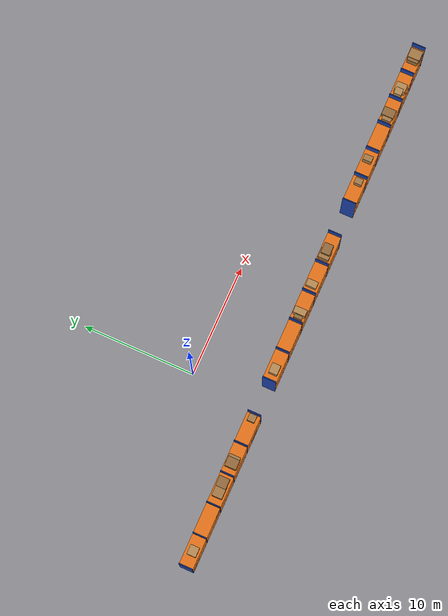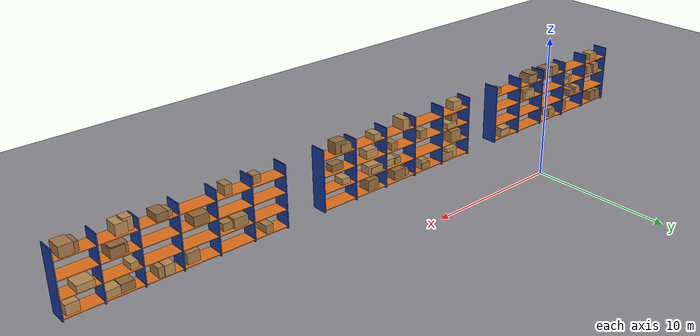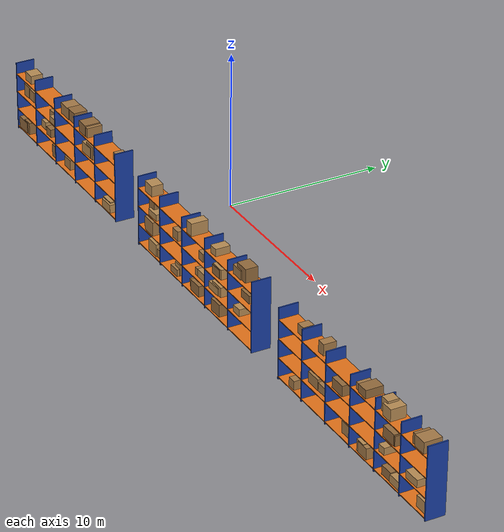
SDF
<sdf version="1.9">
 <world name="warehouse">
  <model name="ground_plane">
   <static>true</static>
   <link name="link">
    <collision name="collision">
     <geometry><plane><normal>0 0 1</normal><size>1 1</size></plane></geometry>
    </collision>
    <visual name="visual">
     <geometry><plane><normal>0 0 1</normal><size>200 100</size></plane></geometry>
     <material>
      <ambient>0.55 0.55 0.57 1</ambient>
      <diffuse>0.55 0.55 0.57 1</diffuse>
      <specular>0.1 0.1 0.1 1</specular>
     </material>
    </visual>
   </link>
  </model>
  <model name="rack9">
   <static>true</static>
   <link name="link">
    <collision name="up0_c">
     <pose>-15.000 -6.300 2.250 0 0 0</pose>
     <geometry><box><size>0.080 1.200 4.500</size></box></geometry>
    </collision>
    <visual name="up0_v">
     <pose>-15.000 -6.300 2.250 0 0 0</pose>
     <geometry><box><size>0.080 1.200 4.500</size></box></geometry>
     <material>
      <ambient>0.1 0.25 0.65 1</ambient>
      <diffuse>0.1 0.25 0.65 1</diffuse>
      <specular>0.1 0.1 0.1 1</specular>
     </material>
    </visual>
    <collision name="up1_c">
     <pose>-12.300 -6.300 2.250 0 0 0</pose>
     <geometry><box><size>0.080 1.200 4.500</size></box></geometry>
    </collision>
    <visual name="up1_v">
     <pose>-12.300 -6.300 2.250 0 0 0</pose>
     <geometry><box><size>0.080 1.200 4.500</size></box></geometry>
     <material>
      <ambient>0.1 0.25 0.65 1</ambient>
      <diffuse>0.1 0.25 0.65 1</diffuse>
      <specular>0.1 0.1 0.1 1</specular>
     </material>
    </visual>
    <collision name="up2_c">
     <pose>-9.600 -6.300 2.250 0 0 0</pose>
     <geometry><box><size>0.080 1.200 4.500</size></box></geometry>
    </collision>
    <visual name="up2_v">
     <pose>-9.600 -6.300 2.250 0 0 0</pose>
     <geometry><box><size>0.080 1.200 4.500</size></box></geometry>
     <material>
      <ambient>0.1 0.25 0.65 1</ambient>
      <diffuse>0.1 0.25 0.65 1</diffuse>
      <specular>0.1 0.1 0.1 1</specular>
     </material>
    </visual>
    <collision name="up3_c">
     <pose>-6.900 -6.300 2.250 0 0 0</pose>
     <geometry><box><size>0.080 1.200 4.500</size></box></geometry>
    </collision>
    <visual name="up3_v">
     <pose>-6.900 -6.300 2.250 0 0 0</pose>
     <geometry><box><size>0.080 1.200 4.500</size></box></geometry>
     <material>
      <ambient>0.1 0.25 0.65 1</ambient>
      <diffuse>0.1 0.25 0.65 1</diffuse>
      <specular>0.1 0.1 0.1 1</specular>
     </material>
    </visual>
    <collision name="up4_c">
     <pose>-4.200 -6.300 2.250 0 0 0</pose>
     <geometry><box><size>0.080 1.200 4.500</size></box></geometry>
    </collision>
    <visual name="up4_v">
     <pose>-4.200 -6.300 2.250 0 0 0</pose>
     <geometry><box><size>0.080 1.200 4.500</size></box></geometry>
     <material>
      <ambient>0.1 0.25 0.65 1</ambient>
      <diffuse>0.1 0.25 0.65 1</diffuse>
      <specular>0.1 0.1 0.1 1</specular>
     </material>
    </visual>
    <collision name="up5_c">
     <pose>-1.500 -6.300 2.250 0 0 0</pose>
     <geometry><box><size>0.080 1.200 4.500</size></box></geometry>
    </collision>
    <visual name="up5_v">
     <pose>-1.500 -6.300 2.250 0 0 0</pose>
     <geometry><box><size>0.080 1.200 4.500</size></box></geometry>
     <material>
      <ambient>0.1 0.25 0.65 1</ambient>
      <diffuse>0.1 0.25 0.65 1</diffuse>
      <specular>0.1 0.1 0.1 1</specular>
     </material>
    </visual>
    <collision name="sh0_c">
     <pose>-8.250 -6.300 0.150 0 0 0</pose>
     <geometry><box><size>13.500 1.200 0.050</size></box></geometry>
    </collision>
    <visual name="sh0_v">
     <pose>-8.250 -6.300 0.150 0 0 0</pose>
     <geometry><box><size>13.500 1.200 0.050</size></box></geometry>
     <material>
      <ambient>0.9 0.45 0.1 1</ambient>
      <diffuse>0.9 0.45 0.1 1</diffuse>
      <specular>0.1 0.1 0.1 1</specular>
     </material>
    </visual>
    <collision name="sh1_c">
     <pose>-8.250 -6.300 1.350 0 0 0</pose>
     <geometry><box><size>13.500 1.200 0.050</size></box></geometry>
    </collision>
    <visual name="sh1_v">
     <pose>-8.250 -6.300 1.350 0 0 0</pose>
     <geometry><box><size>13.500 1.200 0.050</size></box></geometry>
     <material>
      <ambient>0.9 0.45 0.1 1</ambient>
      <diffuse>0.9 0.45 0.1 1</diffuse>
      <specular>0.1 0.1 0.1 1</specular>
     </material>
    </visual>
    <collision name="sh2_c">
     <pose>-8.250 -6.300 2.550 0 0 0</pose>
     <geometry><box><size>13.500 1.200 0.050</size></box></geometry>
    </collision>
    <visual name="sh2_v">
     <pose>-8.250 -6.300 2.550 0 0 0</pose>
     <geometry><box><size>13.500 1.200 0.050</size></box></geometry>
     <material>
      <ambient>0.9 0.45 0.1 1</ambient>
      <diffuse>0.9 0.45 0.1 1</diffuse>
      <specular>0.1 0.1 0.1 1</specular>
     </material>
    </visual>
    <collision name="sh3_c">
     <pose>-8.250 -6.300 3.750 0 0 0</pose>
     <geometry><box><size>13.500 1.200 0.050</size></box></geometry>
    </collision>
    <visual name="sh3_v">
     <pose>-8.250 -6.300 3.750 0 0 0</pose>
     <geometry><box><size>13.500 1.200 0.050</size></box></geometry>
     <material>
      <ambient>0.9 0.45 0.1 1</ambient>
      <diffuse>0.9 0.45 0.1 1</diffuse>
      <specular>0.1 0.1 0.1 1</specular>
     </material>
    </visual>
    <collision name="c0_c">
     <pose>-14.299 -6.344 0.527 0 0 0</pose>
     <geometry><box><size>1.097 1.026 0.704</size></box></geometry>
    </collision>
    <visual name="c0_v">
     <pose>-14.299 -6.344 0.527 0 0 0</pose>
     <geometry><box><size>1.097 1.026 0.704</size></box></geometry>
     <material>
      <ambient>0.58 0.42 0.24 1</ambient>
      <diffuse>0.58 0.42 0.24 1</diffuse>
      <specular>0.1 0.1 0.1 1</specular>
     </material>
    </visual>
    <collision name="c1_c">
     <pose>-13.841 -6.322 0.564 0 0 0</pose>
     <geometry><box><size>0.648 0.995 0.777</size></box></geometry>
    </collision>
    <visual name="c1_v">
     <pose>-13.841 -6.322 0.564 0 0 0</pose>
     <geometry><box><size>0.648 0.995 0.777</size></box></geometry>
     <material>
      <ambient>0.58 0.42 0.24 1</ambient>
      <diffuse>0.58 0.42 0.24 1</diffuse>
      <specular>0.1 0.1 0.1 1</specular>
     </material>
    </visual>
    <collision name="c2_c">
     <pose>-13.403 -6.327 2.913 0 0 0</pose>
     <geometry><box><size>0.748 0.663 0.675</size></box></geometry>
    </collision>
    <visual name="c2_v">
     <pose>-13.403 -6.327 2.913 0 0 0</pose>
     <geometry><box><size>0.748 0.663 0.675</size></box></geometry>
     <material>
      <ambient>0.65 0.48 0.28 1</ambient>
      <diffuse>0.65 0.48 0.28 1</diffuse>
      <specular>0.1 0.1 0.1 1</specular>
     </material>
    </visual>
    <collision name="c3_c">
     <pose>-14.014 -6.263 2.959 0 0 0</pose>
     <geometry><box><size>0.666 0.840 0.769</size></box></geometry>
    </collision>
    <visual name="c3_v">
     <pose>-14.014 -6.263 2.959 0 0 0</pose>
     <geometry><box><size>0.666 0.840 0.769</size></box></geometry>
     <material>
      <ambient>0.65 0.48 0.28 1</ambient>
      <diffuse>0.65 0.48 0.28 1</diffuse>
      <specular>0.1 0.1 0.1 1</specular>
     </material>
    </visual>
    <collision name="c4_c">
     <pose>-13.623 -6.346 4.049 0 0 0</pose>
     <geometry><box><size>0.830 0.770 0.548</size></box></geometry>
    </collision>
    <visual name="c4_v">
     <pose>-13.623 -6.346 4.049 0 0 0</pose>
     <geometry><box><size>0.830 0.770 0.548</size></box></geometry>
     <material>
      <ambient>0.72 0.55 0.33 1</ambient>
      <diffuse>0.72 0.55 0.33 1</diffuse>
      <specular>0.1 0.1 0.1 1</specular>
     </material>
    </visual>
    <collision name="c5_c">
     <pose>-10.183 -6.346 0.562 0 0 0</pose>
     <geometry><box><size>0.517 0.758 0.775</size></box></geometry>
    </collision>
    <visual name="c5_v">
     <pose>-10.183 -6.346 0.562 0 0 0</pose>
     <geometry><box><size>0.517 0.758 0.775</size></box></geometry>
     <material>
      <ambient>0.58 0.42 0.24 1</ambient>
      <diffuse>0.58 0.42 0.24 1</diffuse>
      <specular>0.1 0.1 0.1 1</specular>
     </material>
    </visual>
    <collision name="c6_c">
     <pose>-10.785 -6.253 1.633 0 0 0</pose>
     <geometry><box><size>0.611 1.052 0.516</size></box></geometry>
    </collision>
    <visual name="c6_v">
     <pose>-10.785 -6.253 1.633 0 0 0</pose>
     <geometry><box><size>0.611 1.052 0.516</size></box></geometry>
     <material>
      <ambient>0.58 0.42 0.24 1</ambient>
      <diffuse>0.58 0.42 0.24 1</diffuse>
      <specular>0.1 0.1 0.1 1</specular>
     </material>
    </visual>
    <collision name="c7_c">
     <pose>-11.807 -6.254 1.624 0 0 0</pose>
     <geometry><box><size>0.573 0.733 0.498</size></box></geometry>
    </collision>
    <visual name="c7_v">
     <pose>-11.807 -6.254 1.624 0 0 0</pose>
     <geometry><box><size>0.573 0.733 0.498</size></box></geometry>
     <material>
      <ambient>0.72 0.55 0.33 1</ambient>
      <diffuse>0.72 0.55 0.33 1</diffuse>
      <specular>0.1 0.1 0.1 1</specular>
     </material>
    </visual>
    <collision name="c8_c">
     <pose>-10.050 -6.347 2.777 0 0 0</pose>
     <geometry><box><size>0.632 1.066 0.405</size></box></geometry>
    </collision>
    <visual name="c8_v">
     <pose>-10.050 -6.347 2.777 0 0 0</pose>
     <geometry><box><size>0.632 1.066 0.405</size></box></geometry>
     <material>
      <ambient>0.72 0.55 0.33 1</ambient>
      <diffuse>0.72 0.55 0.33 1</diffuse>
      <specular>0.1 0.1 0.1 1</specular>
     </material>
    </visual>
    <collision name="c9_c">
     <pose>-10.384 -6.298 2.833 0 0 0</pose>
     <geometry><box><size>1.039 0.620 0.515</size></box></geometry>
    </collision>
    <visual name="c9_v">
     <pose>-10.384 -6.298 2.833 0 0 0</pose>
     <geometry><box><size>1.039 0.620 0.515</size></box></geometry>
     <material>
      <ambient>0.65 0.48 0.28 1</ambient>
      <diffuse>0.65 0.48 0.28 1</diffuse>
      <specular>0.1 0.1 0.1 1</specular>
     </material>
    </visual>
    <collision name="c10_c">
     <pose>-8.554 -6.256 0.501 0 0 0</pose>
     <geometry><box><size>0.766 0.722 0.653</size></box></geometry>
    </collision>
    <visual name="c10_v">
     <pose>-8.554 -6.256 0.501 0 0 0</pose>
     <geometry><box><size>0.766 0.722 0.653</size></box></geometry>
     <material>
      <ambient>0.65 0.48 0.28 1</ambient>
      <diffuse>0.65 0.48 0.28 1</diffuse>
      <specular>0.1 0.1 0.1 1</specular>
     </material>
    </visual>
    <collision name="c11_c">
     <pose>-8.445 -6.301 4.128 0 0 0</pose>
     <geometry><box><size>1.073 0.891 0.707</size></box></geometry>
    </collision>
    <visual name="c11_v">
     <pose>-8.445 -6.301 4.128 0 0 0</pose>
     <geometry><box><size>1.073 0.891 0.707</size></box></geometry>
     <material>
      <ambient>0.65 0.48 0.28 1</ambient>
      <diffuse>0.65 0.48 0.28 1</diffuse>
      <specular>0.1 0.1 0.1 1</specular>
     </material>
    </visual>
    <collision name="c12_c">
     <pose>-7.695 -6.267 4.130 0 0 0</pose>
     <geometry><box><size>0.895 0.889 0.710</size></box></geometry>
    </collision>
    <visual name="c12_v">
     <pose>-7.695 -6.267 4.130 0 0 0</pose>
     <geometry><box><size>0.895 0.889 0.710</size></box></geometry>
     <material>
      <ambient>0.58 0.42 0.24 1</ambient>
      <diffuse>0.58 0.42 0.24 1</diffuse>
      <specular>0.1 0.1 0.1 1</specular>
     </material>
    </visual>
    <collision name="c13_c">
     <pose>-5.478 -6.300 2.916 0 0 0</pose>
     <geometry><box><size>1.071 1.016 0.682</size></box></geometry>
    </collision>
    <visual name="c13_v">
     <pose>-5.478 -6.300 2.916 0 0 0</pose>
     <geometry><box><size>1.071 1.016 0.682</size></box></geometry>
     <material>
      <ambient>0.72 0.55 0.33 1</ambient>
      <diffuse>0.72 0.55 0.33 1</diffuse>
      <specular>0.1 0.1 0.1 1</specular>
     </material>
    </visual>
    <collision name="c14_c">
     <pose>-5.110 -6.290 3.001 0 0 0</pose>
     <geometry><box><size>0.860 0.969 0.853</size></box></geometry>
    </collision>
    <visual name="c14_v">
     <pose>-5.110 -6.290 3.001 0 0 0</pose>
     <geometry><box><size>0.860 0.969 0.853</size></box></geometry>
     <material>
      <ambient>0.65 0.48 0.28 1</ambient>
      <diffuse>0.65 0.48 0.28 1</diffuse>
      <specular>0.1 0.1 0.1 1</specular>
     </material>
    </visual>
    <collision name="c15_c">
     <pose>-5.950 -6.319 4.127 0 0 0</pose>
     <geometry><box><size>0.838 1.003 0.704</size></box></geometry>
    </collision>
    <visual name="c15_v">
     <pose>-5.950 -6.319 4.127 0 0 0</pose>
     <geometry><box><size>0.838 1.003 0.704</size></box></geometry>
     <material>
      <ambient>0.58 0.42 0.24 1</ambient>
      <diffuse>0.58 0.42 0.24 1</diffuse>
      <specular>0.1 0.1 0.1 1</specular>
     </material>
    </visual>
    <collision name="c16_c">
     <pose>-5.773 -6.299 4.089 0 0 0</pose>
     <geometry><box><size>0.954 0.991 0.629</size></box></geometry>
    </collision>
    <visual name="c16_v">
     <pose>-5.773 -6.299 4.089 0 0 0</pose>
     <geometry><box><size>0.954 0.991 0.629</size></box></geometry>
     <material>
      <ambient>0.65 0.48 0.28 1</ambient>
      <diffuse>0.65 0.48 0.28 1</diffuse>
      <specular>0.1 0.1 0.1 1</specular>
     </material>
    </visual>
    <collision name="c17_c">
     <pose>-2.949 -6.286 0.471 0 0 0</pose>
     <geometry><box><size>0.918 0.913 0.592</size></box></geometry>
    </collision>
    <visual name="c17_v">
     <pose>-2.949 -6.286 0.471 0 0 0</pose>
     <geometry><box><size>0.918 0.913 0.592</size></box></geometry>
     <material>
      <ambient>0.72 0.55 0.33 1</ambient>
      <diffuse>0.72 0.55 0.33 1</diffuse>
      <specular>0.1 0.1 0.1 1</specular>
     </material>
    </visual>
    <collision name="c18_c">
     <pose>-2.789 -6.345 0.439 0 0 0</pose>
     <geometry><box><size>1.023 1.058 0.528</size></box></geometry>
    </collision>
    <visual name="c18_v">
     <pose>-2.789 -6.345 0.439 0 0 0</pose>
     <geometry><box><size>1.023 1.058 0.528</size></box></geometry>
     <material>
      <ambient>0.72 0.55 0.33 1</ambient>
      <diffuse>0.72 0.55 0.33 1</diffuse>
      <specular>0.1 0.1 0.1 1</specular>
     </material>
    </visual>
    <collision name="c19_c">
     <pose>-1.933 -6.285 4.005 0 0 0</pose>
     <geometry><box><size>0.625 0.641 0.460</size></box></geometry>
    </collision>
    <visual name="c19_v">
     <pose>-1.933 -6.285 4.005 0 0 0</pose>
     <geometry><box><size>0.625 0.641 0.460</size></box></geometry>
     <material>
      <ambient>0.65 0.48 0.28 1</ambient>
      <diffuse>0.65 0.48 0.28 1</diffuse>
      <specular>0.1 0.1 0.1 1</specular>
     </material>
    </visual>
   </link>
  </model>
  <model name="rack10">
   <static>true</static>
   <link name="link">
    <collision name="up0_c">
     <pose>1.500 -6.300 2.250 0 0 0</pose>
     <geometry><box><size>0.080 1.200 4.500</size></box></geometry>
    </collision>
    <visual name="up0_v">
     <pose>1.500 -6.300 2.250 0 0 0</pose>
     <geometry><box><size>0.080 1.200 4.500</size></box></geometry>
     <material>
      <ambient>0.1 0.25 0.65 1</ambient>
      <diffuse>0.1 0.25 0.65 1</diffuse>
      <specular>0.1 0.1 0.1 1</specular>
     </material>
    </visual>
    <collision name="up1_c">
     <pose>4.200 -6.300 2.250 0 0 0</pose>
     <geometry><box><size>0.080 1.200 4.500</size></box></geometry>
    </collision>
    <visual name="up1_v">
     <pose>4.200 -6.300 2.250 0 0 0</pose>
     <geometry><box><size>0.080 1.200 4.500</size></box></geometry>
     <material>
      <ambient>0.1 0.25 0.65 1</ambient>
      <diffuse>0.1 0.25 0.65 1</diffuse>
      <specular>0.1 0.1 0.1 1</specular>
     </material>
    </visual>
    <collision name="up2_c">
     <pose>6.900 -6.300 2.250 0 0 0</pose>
     <geometry><box><size>0.080 1.200 4.500</size></box></geometry>
    </collision>
    <visual name="up2_v">
     <pose>6.900 -6.300 2.250 0 0 0</pose>
     <geometry><box><size>0.080 1.200 4.500</size></box></geometry>
     <material>
      <ambient>0.1 0.25 0.65 1</ambient>
      <diffuse>0.1 0.25 0.65 1</diffuse>
      <specular>0.1 0.1 0.1 1</specular>
     </material>
    </visual>
    <collision name="up3_c">
     <pose>9.600 -6.300 2.250 0 0 0</pose>
     <geometry><box><size>0.080 1.200 4.500</size></box></geometry>
    </collision>
    <visual name="up3_v">
     <pose>9.600 -6.300 2.250 0 0 0</pose>
     <geometry><box><size>0.080 1.200 4.500</size></box></geometry>
     <material>
      <ambient>0.1 0.25 0.65 1</ambient>
      <diffuse>0.1 0.25 0.65 1</diffuse>
      <specular>0.1 0.1 0.1 1</specular>
     </material>
    </visual>
    <collision name="up4_c">
     <pose>12.300 -6.300 2.250 0 0 0</pose>
     <geometry><box><size>0.080 1.200 4.500</size></box></geometry>
    </collision>
    <visual name="up4_v">
     <pose>12.300 -6.300 2.250 0 0 0</pose>
     <geometry><box><size>0.080 1.200 4.500</size></box></geometry>
     <material>
      <ambient>0.1 0.25 0.65 1</ambient>
      <diffuse>0.1 0.25 0.65 1</diffuse>
      <specular>0.1 0.1 0.1 1</specular>
     </material>
    </visual>
    <collision name="up5_c">
     <pose>15.000 -6.300 2.250 0 0 0</pose>
     <geometry><box><size>0.080 1.200 4.500</size></box></geometry>
    </collision>
    <visual name="up5_v">
     <pose>15.000 -6.300 2.250 0 0 0</pose>
     <geometry><box><size>0.080 1.200 4.500</size></box></geometry>
     <material>
      <ambient>0.1 0.25 0.65 1</ambient>
      <diffuse>0.1 0.25 0.65 1</diffuse>
      <specular>0.1 0.1 0.1 1</specular>
     </material>
    </visual>
    <collision name="sh0_c">
     <pose>8.250 -6.300 0.150 0 0 0</pose>
     <geometry><box><size>13.500 1.200 0.050</size></box></geometry>
    </collision>
    <visual name="sh0_v">
     <pose>8.250 -6.300 0.150 0 0 0</pose>
     <geometry><box><size>13.500 1.200 0.050</size></box></geometry>
     <material>
      <ambient>0.9 0.45 0.1 1</ambient>
      <diffuse>0.9 0.45 0.1 1</diffuse>
      <specular>0.1 0.1 0.1 1</specular>
     </material>
    </visual>
    <collision name="sh1_c">
     <pose>8.250 -6.300 1.350 0 0 0</pose>
     <geometry><box><size>13.500 1.200 0.050</size></box></geometry>
    </collision>
    <visual name="sh1_v">
     <pose>8.250 -6.300 1.350 0 0 0</pose>
     <geometry><box><size>13.500 1.200 0.050</size></box></geometry>
     <material>
      <ambient>0.9 0.45 0.1 1</ambient>
      <diffuse>0.9 0.45 0.1 1</diffuse>
      <specular>0.1 0.1 0.1 1</specular>
     </material>
    </visual>
    <collision name="sh2_c">
     <pose>8.250 -6.300 2.550 0 0 0</pose>
     <geometry><box><size>13.500 1.200 0.050</size></box></geometry>
    </collision>
    <visual name="sh2_v">
     <pose>8.250 -6.300 2.550 0 0 0</pose>
     <geometry><box><size>13.500 1.200 0.050</size></box></geometry>
     <material>
      <ambient>0.9 0.45 0.1 1</ambient>
      <diffuse>0.9 0.45 0.1 1</diffuse>
      <specular>0.1 0.1 0.1 1</specular>
     </material>
    </visual>
    <collision name="sh3_c">
     <pose>8.250 -6.300 3.750 0 0 0</pose>
     <geometry><box><size>13.500 1.200 0.050</size></box></geometry>
    </collision>
    <visual name="sh3_v">
     <pose>8.250 -6.300 3.750 0 0 0</pose>
     <geometry><box><size>13.500 1.200 0.050</size></box></geometry>
     <material>
      <ambient>0.9 0.45 0.1 1</ambient>
      <diffuse>0.9 0.45 0.1 1</diffuse>
      <specular>0.1 0.1 0.1 1</specular>
     </material>
    </visual>
    <collision name="c0_c">
     <pose>3.509 -6.280 0.433 0 0 0</pose>
     <geometry><box><size>1.076 0.904 0.516</size></box></geometry>
    </collision>
    <visual name="c0_v">
     <pose>3.509 -6.280 0.433 0 0 0</pose>
     <geometry><box><size>1.076 0.904 0.516</size></box></geometry>
     <material>
      <ambient>0.65 0.48 0.28 1</ambient>
      <diffuse>0.65 0.48 0.28 1</diffuse>
      <specular>0.1 0.1 0.1 1</specular>
     </material>
    </visual>
    <collision name="c1_c">
     <pose>3.068 -6.320 0.562 0 0 0</pose>
     <geometry><box><size>0.953 0.978 0.775</size></box></geometry>
    </collision>
    <visual name="c1_v">
     <pose>3.068 -6.320 0.562 0 0 0</pose>
     <geometry><box><size>0.953 0.978 0.775</size></box></geometry>
     <material>
      <ambient>0.72 0.55 0.33 1</ambient>
      <diffuse>0.72 0.55 0.33 1</diffuse>
      <specular>0.1 0.1 0.1 1</specular>
     </material>
    </visual>
    <collision name="c2_c">
     <pose>2.710 -6.327 1.810 0 0 0</pose>
     <geometry><box><size>0.986 1.029 0.870</size></box></geometry>
    </collision>
    <visual name="c2_v">
     <pose>2.710 -6.327 1.810 0 0 0</pose>
     <geometry><box><size>0.986 1.029 0.870</size></box></geometry>
     <material>
      <ambient>0.65 0.48 0.28 1</ambient>
      <diffuse>0.65 0.48 0.28 1</diffuse>
      <specular>0.1 0.1 0.1 1</specular>
     </material>
    </visual>
    <collision name="c3_c">
     <pose>2.678 -6.329 1.636 0 0 0</pose>
     <geometry><box><size>0.871 0.915 0.522</size></box></geometry>
    </collision>
    <visual name="c3_v">
     <pose>2.678 -6.329 1.636 0 0 0</pose>
     <geometry><box><size>0.871 0.915 0.522</size></box></geometry>
     <material>
      <ambient>0.65 0.48 0.28 1</ambient>
      <diffuse>0.65 0.48 0.28 1</diffuse>
      <specular>0.1 0.1 0.1 1</specular>
     </material>
    </visual>
    <collision name="c4_c">
     <pose>3.168 -6.319 2.775 0 0 0</pose>
     <geometry><box><size>0.946 1.040 0.401</size></box></geometry>
    </collision>
    <visual name="c4_v">
     <pose>3.168 -6.319 2.775 0 0 0</pose>
     <geometry><box><size>0.946 1.040 0.401</size></box></geometry>
     <material>
      <ambient>0.72 0.55 0.33 1</ambient>
      <diffuse>0.72 0.55 0.33 1</diffuse>
      <specular>0.1 0.1 0.1 1</specular>
     </material>
    </visual>
    <collision name="c5_c">
     <pose>2.730 -6.316 3.023 0 0 0</pose>
     <geometry><box><size>0.603 0.673 0.896</size></box></geometry>
    </collision>
    <visual name="c5_v">
     <pose>2.730 -6.316 3.023 0 0 0</pose>
     <geometry><box><size>0.603 0.673 0.896</size></box></geometry>
     <material>
      <ambient>0.58 0.42 0.24 1</ambient>
      <diffuse>0.58 0.42 0.24 1</diffuse>
      <specular>0.1 0.1 0.1 1</specular>
     </material>
    </visual>
    <collision name="c6_c">
     <pose>2.481 -6.349 4.112 0 0 0</pose>
     <geometry><box><size>0.850 0.746 0.674</size></box></geometry>
    </collision>
    <visual name="c6_v">
     <pose>2.481 -6.349 4.112 0 0 0</pose>
     <geometry><box><size>0.850 0.746 0.674</size></box></geometry>
     <material>
      <ambient>0.72 0.55 0.33 1</ambient>
      <diffuse>0.72 0.55 0.33 1</diffuse>
      <specular>0.1 0.1 0.1 1</specular>
     </material>
    </visual>
    <collision name="c7_c">
     <pose>5.827 -6.253 0.526 0 0 0</pose>
     <geometry><box><size>0.569 0.710 0.703</size></box></geometry>
    </collision>
    <visual name="c7_v">
     <pose>5.827 -6.253 0.526 0 0 0</pose>
     <geometry><box><size>0.569 0.710 0.703</size></box></geometry>
     <material>
      <ambient>0.72 0.55 0.33 1</ambient>
      <diffuse>0.72 0.55 0.33 1</diffuse>
      <specular>0.1 0.1 0.1 1</specular>
     </material>
    </visual>
    <collision name="c8_c">
     <pose>5.718 -6.299 0.389 0 0 0</pose>
     <geometry><box><size>0.762 0.992 0.427</size></box></geometry>
    </collision>
    <visual name="c8_v">
     <pose>5.718 -6.299 0.389 0 0 0</pose>
     <geometry><box><size>0.762 0.992 0.427</size></box></geometry>
     <material>
      <ambient>0.65 0.48 0.28 1</ambient>
      <diffuse>0.65 0.48 0.28 1</diffuse>
      <specular>0.1 0.1 0.1 1</specular>
     </material>
    </visual>
    <collision name="c9_c">
     <pose>5.953 -6.348 2.881 0 0 0</pose>
     <geometry><box><size>0.631 0.936 0.611</size></box></geometry>
    </collision>
    <visual name="c9_v">
     <pose>5.953 -6.348 2.881 0 0 0</pose>
     <geometry><box><size>0.631 0.936 0.611</size></box></geometry>
     <material>
      <ambient>0.65 0.48 0.28 1</ambient>
      <diffuse>0.65 0.48 0.28 1</diffuse>
      <specular>0.1 0.1 0.1 1</specular>
     </material>
    </visual>
    <collision name="c10_c">
     <pose>8.203 -6.323 0.515 0 0 0</pose>
     <geometry><box><size>0.971 0.906 0.680</size></box></geometry>
    </collision>
    <visual name="c10_v">
     <pose>8.203 -6.323 0.515 0 0 0</pose>
     <geometry><box><size>0.971 0.906 0.680</size></box></geometry>
     <material>
      <ambient>0.58 0.42 0.24 1</ambient>
      <diffuse>0.58 0.42 0.24 1</diffuse>
      <specular>0.1 0.1 0.1 1</specular>
     </material>
    </visual>
    <collision name="c11_c">
     <pose>7.767 -6.261 0.433 0 0 0</pose>
     <geometry><box><size>0.830 0.726 0.517</size></box></geometry>
    </collision>
    <visual name="c11_v">
     <pose>7.767 -6.261 0.433 0 0 0</pose>
     <geometry><box><size>0.830 0.726 0.517</size></box></geometry>
     <material>
      <ambient>0.65 0.48 0.28 1</ambient>
      <diffuse>0.65 0.48 0.28 1</diffuse>
      <specular>0.1 0.1 0.1 1</specular>
     </material>
    </visual>
    <collision name="c12_c">
     <pose>8.374 -6.299 1.605 0 0 0</pose>
     <geometry><box><size>0.521 0.763 0.460</size></box></geometry>
    </collision>
    <visual name="c12_v">
     <pose>8.374 -6.299 1.605 0 0 0</pose>
     <geometry><box><size>0.521 0.763 0.460</size></box></geometry>
     <material>
      <ambient>0.65 0.48 0.28 1</ambient>
      <diffuse>0.65 0.48 0.28 1</diffuse>
      <specular>0.1 0.1 0.1 1</specular>
     </material>
    </visual>
    <collision name="c13_c">
     <pose>8.876 -6.340 1.619 0 0 0</pose>
     <geometry><box><size>0.957 0.709 0.488</size></box></geometry>
    </collision>
    <visual name="c13_v">
     <pose>8.876 -6.340 1.619 0 0 0</pose>
     <geometry><box><size>0.957 0.709 0.488</size></box></geometry>
     <material>
      <ambient>0.72 0.55 0.33 1</ambient>
      <diffuse>0.72 0.55 0.33 1</diffuse>
      <specular>0.1 0.1 0.1 1</specular>
     </material>
    </visual>
    <collision name="c14_c">
     <pose>8.736 -6.254 2.833 0 0 0</pose>
     <geometry><box><size>0.538 0.822 0.515</size></box></geometry>
    </collision>
    <visual name="c14_v">
     <pose>8.736 -6.254 2.833 0 0 0</pose>
     <geometry><box><size>0.538 0.822 0.515</size></box></geometry>
     <material>
      <ambient>0.65 0.48 0.28 1</ambient>
      <diffuse>0.65 0.48 0.28 1</diffuse>
      <specular>0.1 0.1 0.1 1</specular>
     </material>
    </visual>
    <collision name="c15_c">
     <pose>7.418 -6.345 4.021 0 0 0</pose>
     <geometry><box><size>0.620 0.714 0.493</size></box></geometry>
    </collision>
    <visual name="c15_v">
     <pose>7.418 -6.345 4.021 0 0 0</pose>
     <geometry><box><size>0.620 0.714 0.493</size></box></geometry>
     <material>
      <ambient>0.58 0.42 0.24 1</ambient>
      <diffuse>0.58 0.42 0.24 1</diffuse>
      <specular>0.1 0.1 0.1 1</specular>
     </material>
    </visual>
    <collision name="c16_c">
     <pose>7.709 -6.321 4.178 0 0 0</pose>
     <geometry><box><size>0.570 1.076 0.806</size></box></geometry>
    </collision>
    <visual name="c16_v">
     <pose>7.709 -6.321 4.178 0 0 0</pose>
     <geometry><box><size>0.570 1.076 0.806</size></box></geometry>
     <material>
      <ambient>0.72 0.55 0.33 1</ambient>
      <diffuse>0.72 0.55 0.33 1</diffuse>
      <specular>0.1 0.1 0.1 1</specular>
     </material>
    </visual>
    <collision name="c17_c">
     <pose>10.677 -6.314 0.566 0 0 0</pose>
     <geometry><box><size>0.934 0.962 0.782</size></box></geometry>
    </collision>
    <visual name="c17_v">
     <pose>10.677 -6.314 0.566 0 0 0</pose>
     <geometry><box><size>0.934 0.962 0.782</size></box></geometry>
     <material>
      <ambient>0.58 0.42 0.24 1</ambient>
      <diffuse>0.58 0.42 0.24 1</diffuse>
      <specular>0.1 0.1 0.1 1</specular>
     </material>
    </visual>
    <collision name="c18_c">
     <pose>10.572 -6.267 1.682 0 0 0</pose>
     <geometry><box><size>1.019 0.793 0.613</size></box></geometry>
    </collision>
    <visual name="c18_v">
     <pose>10.572 -6.267 1.682 0 0 0</pose>
     <geometry><box><size>1.019 0.793 0.613</size></box></geometry>
     <material>
      <ambient>0.72 0.55 0.33 1</ambient>
      <diffuse>0.72 0.55 0.33 1</diffuse>
      <specular>0.1 0.1 0.1 1</specular>
     </material>
    </visual>
    <collision name="c19_c">
     <pose>10.328 -6.270 1.603 0 0 0</pose>
     <geometry><box><size>1.046 0.902 0.457</size></box></geometry>
    </collision>
    <visual name="c19_v">
     <pose>10.328 -6.270 1.603 0 0 0</pose>
     <geometry><box><size>1.046 0.902 0.457</size></box></geometry>
     <material>
      <ambient>0.72 0.55 0.33 1</ambient>
      <diffuse>0.72 0.55 0.33 1</diffuse>
      <specular>0.1 0.1 0.1 1</specular>
     </material>
    </visual>
    <collision name="c20_c">
     <pose>10.721 -6.310 2.889 0 0 0</pose>
     <geometry><box><size>0.953 0.785 0.628</size></box></geometry>
    </collision>
    <visual name="c20_v">
     <pose>10.721 -6.310 2.889 0 0 0</pose>
     <geometry><box><size>0.953 0.785 0.628</size></box></geometry>
     <material>
      <ambient>0.72 0.55 0.33 1</ambient>
      <diffuse>0.72 0.55 0.33 1</diffuse>
      <specular>0.1 0.1 0.1 1</specular>
     </material>
    </visual>
    <collision name="c21_c">
     <pose>10.615 -6.337 2.851 0 0 0</pose>
     <geometry><box><size>0.807 0.785 0.551</size></box></geometry>
    </collision>
    <visual name="c21_v">
     <pose>10.615 -6.337 2.851 0 0 0</pose>
     <geometry><box><size>0.807 0.785 0.551</size></box></geometry>
     <material>
      <ambient>0.58 0.42 0.24 1</ambient>
      <diffuse>0.58 0.42 0.24 1</diffuse>
      <specular>0.1 0.1 0.1 1</specular>
     </material>
    </visual>
    <collision name="c22_c">
     <pose>10.306 -6.269 4.013 0 0 0</pose>
     <geometry><box><size>0.600 0.922 0.476</size></box></geometry>
    </collision>
    <visual name="c22_v">
     <pose>10.306 -6.269 4.013 0 0 0</pose>
     <geometry><box><size>0.600 0.922 0.476</size></box></geometry>
     <material>
      <ambient>0.72 0.55 0.33 1</ambient>
      <diffuse>0.72 0.55 0.33 1</diffuse>
      <specular>0.1 0.1 0.1 1</specular>
     </material>
    </visual>
    <collision name="c23_c">
     <pose>13.016 -6.315 1.594 0 0 0</pose>
     <geometry><box><size>0.666 0.837 0.439</size></box></geometry>
    </collision>
    <visual name="c23_v">
     <pose>13.016 -6.315 1.594 0 0 0</pose>
     <geometry><box><size>0.666 0.837 0.439</size></box></geometry>
     <material>
      <ambient>0.72 0.55 0.33 1</ambient>
      <diffuse>0.72 0.55 0.33 1</diffuse>
      <specular>0.1 0.1 0.1 1</specular>
     </material>
    </visual>
    <collision name="c24_c">
     <pose>13.705 -6.251 2.822 0 0 0</pose>
     <geometry><box><size>0.911 0.635 0.493</size></box></geometry>
    </collision>
    <visual name="c24_v">
     <pose>13.705 -6.251 2.822 0 0 0</pose>
     <geometry><box><size>0.911 0.635 0.493</size></box></geometry>
     <material>
      <ambient>0.58 0.42 0.24 1</ambient>
      <diffuse>0.58 0.42 0.24 1</diffuse>
      <specular>0.1 0.1 0.1 1</specular>
     </material>
    </visual>
    <collision name="c25_c">
     <pose>13.424 -6.265 4.209 0 0 0</pose>
     <geometry><box><size>0.941 0.783 0.867</size></box></geometry>
    </collision>
    <visual name="c25_v">
     <pose>13.424 -6.265 4.209 0 0 0</pose>
     <geometry><box><size>0.941 0.783 0.867</size></box></geometry>
     <material>
      <ambient>0.58 0.42 0.24 1</ambient>
      <diffuse>0.58 0.42 0.24 1</diffuse>
      <specular>0.1 0.1 0.1 1</specular>
     </material>
    </visual>
    <collision name="c26_c">
     <pose>13.034 -6.255 4.061 0 0 0</pose>
     <geometry><box><size>0.876 0.933 0.571</size></box></geometry>
    </collision>
    <visual name="c26_v">
     <pose>13.034 -6.255 4.061 0 0 0</pose>
     <geometry><box><size>0.876 0.933 0.571</size></box></geometry>
     <material>
      <ambient>0.65 0.48 0.28 1</ambient>
      <diffuse>0.65 0.48 0.28 1</diffuse>
      <specular>0.1 0.1 0.1 1</specular>
     </material>
    </visual>
   </link>
  </model>
  <model name="rack11">
   <static>true</static>
   <link name="link">
    <collision name="up0_c">
     <pose>18.000 -6.300 2.250 0 0 0</pose>
     <geometry><box><size>0.080 1.200 4.500</size></box></geometry>
    </collision>
    <visual name="up0_v">
     <pose>18.000 -6.300 2.250 0 0 0</pose>
     <geometry><box><size>0.080 1.200 4.500</size></box></geometry>
     <material>
      <ambient>0.1 0.25 0.65 1</ambient>
      <diffuse>0.1 0.25 0.65 1</diffuse>
      <specular>0.1 0.1 0.1 1</specular>
     </material>
    </visual>
    <collision name="up1_c">
     <pose>20.500 -6.300 2.250 0 0 0</pose>
     <geometry><box><size>0.080 1.200 4.500</size></box></geometry>
    </collision>
    <visual name="up1_v">
     <pose>20.500 -6.300 2.250 0 0 0</pose>
     <geometry><box><size>0.080 1.200 4.500</size></box></geometry>
     <material>
      <ambient>0.1 0.25 0.65 1</ambient>
      <diffuse>0.1 0.25 0.65 1</diffuse>
      <specular>0.1 0.1 0.1 1</specular>
     </material>
    </visual>
    <collision name="up2_c">
     <pose>23.000 -6.300 2.250 0 0 0</pose>
     <geometry><box><size>0.080 1.200 4.500</size></box></geometry>
    </collision>
    <visual name="up2_v">
     <pose>23.000 -6.300 2.250 0 0 0</pose>
     <geometry><box><size>0.080 1.200 4.500</size></box></geometry>
     <material>
      <ambient>0.1 0.25 0.65 1</ambient>
      <diffuse>0.1 0.25 0.65 1</diffuse>
      <specular>0.1 0.1 0.1 1</specular>
     </material>
    </visual>
    <collision name="up3_c">
     <pose>25.500 -6.300 2.250 0 0 0</pose>
     <geometry><box><size>0.080 1.200 4.500</size></box></geometry>
    </collision>
    <visual name="up3_v">
     <pose>25.500 -6.300 2.250 0 0 0</pose>
     <geometry><box><size>0.080 1.200 4.500</size></box></geometry>
     <material>
      <ambient>0.1 0.25 0.65 1</ambient>
      <diffuse>0.1 0.25 0.65 1</diffuse>
      <specular>0.1 0.1 0.1 1</specular>
     </material>
    </visual>
    <collision name="up4_c">
     <pose>28.000 -6.300 2.250 0 0 0</pose>
     <geometry><box><size>0.080 1.200 4.500</size></box></geometry>
    </collision>
    <visual name="up4_v">
     <pose>28.000 -6.300 2.250 0 0 0</pose>
     <geometry><box><size>0.080 1.200 4.500</size></box></geometry>
     <material>
      <ambient>0.1 0.25 0.65 1</ambient>
      <diffuse>0.1 0.25 0.65 1</diffuse>
      <specular>0.1 0.1 0.1 1</specular>
     </material>
    </visual>
    <collision name="up5_c">
     <pose>30.500 -6.300 2.250 0 0 0</pose>
     <geometry><box><size>0.080 1.200 4.500</size></box></geometry>
    </collision>
    <visual name="up5_v">
     <pose>30.500 -6.300 2.250 0 0 0</pose>
     <geometry><box><size>0.080 1.200 4.500</size></box></geometry>
     <material>
      <ambient>0.1 0.25 0.65 1</ambient>
      <diffuse>0.1 0.25 0.65 1</diffuse>
      <specular>0.1 0.1 0.1 1</specular>
     </material>
    </visual>
    <collision name="up6_c">
     <pose>33.000 -6.300 2.250 0 0 0</pose>
     <geometry><box><size>0.080 1.200 4.500</size></box></geometry>
    </collision>
    <visual name="up6_v">
     <pose>33.000 -6.300 2.250 0 0 0</pose>
     <geometry><box><size>0.080 1.200 4.500</size></box></geometry>
     <material>
      <ambient>0.1 0.25 0.65 1</ambient>
      <diffuse>0.1 0.25 0.65 1</diffuse>
      <specular>0.1 0.1 0.1 1</specular>
     </material>
    </visual>
    <collision name="sh0_c">
     <pose>25.500 -6.300 0.150 0 0 0</pose>
     <geometry><box><size>15.000 1.200 0.050</size></box></geometry>
    </collision>
    <visual name="sh0_v">
     <pose>25.500 -6.300 0.150 0 0 0</pose>
     <geometry><box><size>15.000 1.200 0.050</size></box></geometry>
     <material>
      <ambient>0.9 0.45 0.1 1</ambient>
      <diffuse>0.9 0.45 0.1 1</diffuse>
      <specular>0.1 0.1 0.1 1</specular>
     </material>
    </visual>
    <collision name="sh1_c">
     <pose>25.500 -6.300 1.350 0 0 0</pose>
     <geometry><box><size>15.000 1.200 0.050</size></box></geometry>
    </collision>
    <visual name="sh1_v">
     <pose>25.500 -6.300 1.350 0 0 0</pose>
     <geometry><box><size>15.000 1.200 0.050</size></box></geometry>
     <material>
      <ambient>0.9 0.45 0.1 1</ambient>
      <diffuse>0.9 0.45 0.1 1</diffuse>
      <specular>0.1 0.1 0.1 1</specular>
     </material>
    </visual>
    <collision name="sh2_c">
     <pose>25.500 -6.300 2.550 0 0 0</pose>
     <geometry><box><size>15.000 1.200 0.050</size></box></geometry>
    </collision>
    <visual name="sh2_v">
     <pose>25.500 -6.300 2.550 0 0 0</pose>
     <geometry><box><size>15.000 1.200 0.050</size></box></geometry>
     <material>
      <ambient>0.9 0.45 0.1 1</ambient>
      <diffuse>0.9 0.45 0.1 1</diffuse>
      <specular>0.1 0.1 0.1 1</specular>
     </material>
    </visual>
    <collision name="sh3_c">
     <pose>25.500 -6.300 3.750 0 0 0</pose>
     <geometry><box><size>15.000 1.200 0.050</size></box></geometry>
    </collision>
    <visual name="sh3_v">
     <pose>25.500 -6.300 3.750 0 0 0</pose>
     <geometry><box><size>15.000 1.200 0.050</size></box></geometry>
     <material>
      <ambient>0.9 0.45 0.1 1</ambient>
      <diffuse>0.9 0.45 0.1 1</diffuse>
      <specular>0.1 0.1 0.1 1</specular>
     </material>
    </visual>
    <collision name="c0_c">
     <pose>19.362 -6.326 0.451 0 0 0</pose>
     <geometry><box><size>0.537 1.019 0.552</size></box></geometry>
    </collision>
    <visual name="c0_v">
     <pose>19.362 -6.326 0.451 0 0 0</pose>
     <geometry><box><size>0.537 1.019 0.552</size></box></geometry>
     <material>
      <ambient>0.65 0.48 0.28 1</ambient>
      <diffuse>0.65 0.48 0.28 1</diffuse>
      <specular>0.1 0.1 0.1 1</specular>
     </material>
    </visual>
    <collision name="c1_c">
     <pose>19.930 -6.336 4.067 0 0 0</pose>
     <geometry><box><size>0.558 0.668 0.584</size></box></geometry>
    </collision>
    <visual name="c1_v">
     <pose>19.930 -6.336 4.067 0 0 0</pose>
     <geometry><box><size>0.558 0.668 0.584</size></box></geometry>
     <material>
      <ambient>0.65 0.48 0.28 1</ambient>
      <diffuse>0.65 0.48 0.28 1</diffuse>
      <specular>0.1 0.1 0.1 1</specular>
     </material>
    </visual>
    <collision name="c2_c">
     <pose>21.343 -6.264 1.703 0 0 0</pose>
     <geometry><box><size>1.018 0.820 0.656</size></box></geometry>
    </collision>
    <visual name="c2_v">
     <pose>21.343 -6.264 1.703 0 0 0</pose>
     <geometry><box><size>1.018 0.820 0.656</size></box></geometry>
     <material>
      <ambient>0.65 0.48 0.28 1</ambient>
      <diffuse>0.65 0.48 0.28 1</diffuse>
      <specular>0.1 0.1 0.1 1</specular>
     </material>
    </visual>
    <collision name="c3_c">
     <pose>22.155 -6.337 1.626 0 0 0</pose>
     <geometry><box><size>0.760 0.637 0.503</size></box></geometry>
    </collision>
    <visual name="c3_v">
     <pose>22.155 -6.337 1.626 0 0 0</pose>
     <geometry><box><size>0.760 0.637 0.503</size></box></geometry>
     <material>
      <ambient>0.65 0.48 0.28 1</ambient>
      <diffuse>0.65 0.48 0.28 1</diffuse>
      <specular>0.1 0.1 0.1 1</specular>
     </material>
    </visual>
    <collision name="c4_c">
     <pose>22.065 -6.263 4.127 0 0 0</pose>
     <geometry><box><size>0.530 0.780 0.705</size></box></geometry>
    </collision>
    <visual name="c4_v">
     <pose>22.065 -6.263 4.127 0 0 0</pose>
     <geometry><box><size>0.530 0.780 0.705</size></box></geometry>
     <material>
      <ambient>0.65 0.48 0.28 1</ambient>
      <diffuse>0.65 0.48 0.28 1</diffuse>
      <specular>0.1 0.1 0.1 1</specular>
     </material>
    </visual>
    <collision name="c5_c">
     <pose>24.733 -6.279 0.548 0 0 0</pose>
     <geometry><box><size>0.861 0.683 0.746</size></box></geometry>
    </collision>
    <visual name="c5_v">
     <pose>24.733 -6.279 0.548 0 0 0</pose>
     <geometry><box><size>0.861 0.683 0.746</size></box></geometry>
     <material>
      <ambient>0.65 0.48 0.28 1</ambient>
      <diffuse>0.65 0.48 0.28 1</diffuse>
      <specular>0.1 0.1 0.1 1</specular>
     </material>
    </visual>
    <collision name="c6_c">
     <pose>24.060 -6.301 2.900 0 0 0</pose>
     <geometry><box><size>1.041 1.027 0.650</size></box></geometry>
    </collision>
    <visual name="c6_v">
     <pose>24.060 -6.301 2.900 0 0 0</pose>
     <geometry><box><size>1.041 1.027 0.650</size></box></geometry>
     <material>
      <ambient>0.58 0.42 0.24 1</ambient>
      <diffuse>0.58 0.42 0.24 1</diffuse>
      <specular>0.1 0.1 0.1 1</specular>
     </material>
    </visual>
    <collision name="c7_c">
     <pose>26.723 -6.308 0.518 0 0 0</pose>
     <geometry><box><size>0.863 1.045 0.686</size></box></geometry>
    </collision>
    <visual name="c7_v">
     <pose>26.723 -6.308 0.518 0 0 0</pose>
     <geometry><box><size>0.863 1.045 0.686</size></box></geometry>
     <material>
      <ambient>0.65 0.48 0.28 1</ambient>
      <diffuse>0.65 0.48 0.28 1</diffuse>
      <specular>0.1 0.1 0.1 1</specular>
     </material>
    </visual>
    <collision name="c8_c">
     <pose>26.459 -6.251 0.536 0 0 0</pose>
     <geometry><box><size>0.657 1.096 0.723</size></box></geometry>
    </collision>
    <visual name="c8_v">
     <pose>26.459 -6.251 0.536 0 0 0</pose>
     <geometry><box><size>0.657 1.096 0.723</size></box></geometry>
     <material>
      <ambient>0.72 0.55 0.33 1</ambient>
      <diffuse>0.72 0.55 0.33 1</diffuse>
      <specular>0.1 0.1 0.1 1</specular>
     </material>
    </visual>
    <collision name="c9_c">
     <pose>26.335 -6.321 3.978 0 0 0</pose>
     <geometry><box><size>1.071 0.808 0.406</size></box></geometry>
    </collision>
    <visual name="c9_v">
     <pose>26.335 -6.321 3.978 0 0 0</pose>
     <geometry><box><size>1.071 0.808 0.406</size></box></geometry>
     <material>
      <ambient>0.65 0.48 0.28 1</ambient>
      <diffuse>0.65 0.48 0.28 1</diffuse>
      <specular>0.1 0.1 0.1 1</specular>
     </material>
    </visual>
    <collision name="c10_c">
     <pose>26.529 -6.285 4.029 0 0 0</pose>
     <geometry><box><size>0.759 1.064 0.509</size></box></geometry>
    </collision>
    <visual name="c10_v">
     <pose>26.529 -6.285 4.029 0 0 0</pose>
     <geometry><box><size>0.759 1.064 0.509</size></box></geometry>
     <material>
      <ambient>0.58 0.42 0.24 1</ambient>
      <diffuse>0.58 0.42 0.24 1</diffuse>
      <specular>0.1 0.1 0.1 1</specular>
     </material>
    </visual>
    <collision name="c11_c">
     <pose>29.037 -6.310 0.456 0 0 0</pose>
     <geometry><box><size>0.865 0.938 0.561</size></box></geometry>
    </collision>
    <visual name="c11_v">
     <pose>29.037 -6.310 0.456 0 0 0</pose>
     <geometry><box><size>0.865 0.938 0.561</size></box></geometry>
     <material>
      <ambient>0.58 0.42 0.24 1</ambient>
      <diffuse>0.58 0.42 0.24 1</diffuse>
      <specular>0.1 0.1 0.1 1</specular>
     </material>
    </visual>
    <collision name="c12_c">
     <pose>29.903 -6.335 0.423 0 0 0</pose>
     <geometry><box><size>0.947 0.948 0.496</size></box></geometry>
    </collision>
    <visual name="c12_v">
     <pose>29.903 -6.335 0.423 0 0 0</pose>
     <geometry><box><size>0.947 0.948 0.496</size></box></geometry>
     <material>
      <ambient>0.72 0.55 0.33 1</ambient>
      <diffuse>0.72 0.55 0.33 1</diffuse>
      <specular>0.1 0.1 0.1 1</specular>
     </material>
    </visual>
    <collision name="c13_c">
     <pose>28.487 -6.298 1.595 0 0 0</pose>
     <geometry><box><size>0.523 0.920 0.439</size></box></geometry>
    </collision>
    <visual name="c13_v">
     <pose>28.487 -6.298 1.595 0 0 0</pose>
     <geometry><box><size>0.523 0.920 0.439</size></box></geometry>
     <material>
      <ambient>0.72 0.55 0.33 1</ambient>
      <diffuse>0.72 0.55 0.33 1</diffuse>
      <specular>0.1 0.1 0.1 1</specular>
     </material>
    </visual>
    <collision name="c14_c">
     <pose>29.246 -6.349 2.916 0 0 0</pose>
     <geometry><box><size>1.050 0.998 0.682</size></box></geometry>
    </collision>
    <visual name="c14_v">
     <pose>29.246 -6.349 2.916 0 0 0</pose>
     <geometry><box><size>1.050 0.998 0.682</size></box></geometry>
     <material>
      <ambient>0.58 0.42 0.24 1</ambient>
      <diffuse>0.58 0.42 0.24 1</diffuse>
      <specular>0.1 0.1 0.1 1</specular>
     </material>
    </visual>
    <collision name="c15_c">
     <pose>29.377 -6.313 2.888 0 0 0</pose>
     <geometry><box><size>0.935 1.015 0.625</size></box></geometry>
    </collision>
    <visual name="c15_v">
     <pose>29.377 -6.313 2.888 0 0 0</pose>
     <geometry><box><size>0.935 1.015 0.625</size></box></geometry>
     <material>
      <ambient>0.58 0.42 0.24 1</ambient>
      <diffuse>0.58 0.42 0.24 1</diffuse>
      <specular>0.1 0.1 0.1 1</specular>
     </material>
    </visual>
    <collision name="c16_c">
     <pose>28.948 -6.341 4.141 0 0 0</pose>
     <geometry><box><size>0.763 0.944 0.731</size></box></geometry>
    </collision>
    <visual name="c16_v">
     <pose>28.948 -6.341 4.141 0 0 0</pose>
     <geometry><box><size>0.763 0.944 0.731</size></box></geometry>
     <material>
      <ambient>0.72 0.55 0.33 1</ambient>
      <diffuse>0.72 0.55 0.33 1</diffuse>
      <specular>0.1 0.1 0.1 1</specular>
     </material>
    </visual>
    <collision name="c17_c">
     <pose>28.484 -6.314 4.208 0 0 0</pose>
     <geometry><box><size>0.617 0.667 0.865</size></box></geometry>
    </collision>
    <visual name="c17_v">
     <pose>28.484 -6.314 4.208 0 0 0</pose>
     <geometry><box><size>0.617 0.667 0.865</size></box></geometry>
     <material>
      <ambient>0.72 0.55 0.33 1</ambient>
      <diffuse>0.72 0.55 0.33 1</diffuse>
      <specular>0.1 0.1 0.1 1</specular>
     </material>
    </visual>
    <collision name="c18_c">
     <pose>32.311 -6.289 0.519 0 0 0</pose>
     <geometry><box><size>0.841 0.839 0.688</size></box></geometry>
    </collision>
    <visual name="c18_v">
     <pose>32.311 -6.289 0.519 0 0 0</pose>
     <geometry><box><size>0.841 0.839 0.688</size></box></geometry>
     <material>
      <ambient>0.72 0.55 0.33 1</ambient>
      <diffuse>0.72 0.55 0.33 1</diffuse>
      <specular>0.1 0.1 0.1 1</specular>
     </material>
    </visual>
    <collision name="c19_c">
     <pose>31.463 -6.251 1.606 0 0 0</pose>
     <geometry><box><size>1.093 1.097 0.462</size></box></geometry>
    </collision>
    <visual name="c19_v">
     <pose>31.463 -6.251 1.606 0 0 0</pose>
     <geometry><box><size>1.093 1.097 0.462</size></box></geometry>
     <material>
      <ambient>0.72 0.55 0.33 1</ambient>
      <diffuse>0.72 0.55 0.33 1</diffuse>
      <specular>0.1 0.1 0.1 1</specular>
     </material>
    </visual>
    <collision name="c20_c">
     <pose>31.767 -6.319 4.092 0 0 0</pose>
     <geometry><box><size>0.641 0.953 0.634</size></box></geometry>
    </collision>
    <visual name="c20_v">
     <pose>31.767 -6.319 4.092 0 0 0</pose>
     <geometry><box><size>0.641 0.953 0.634</size></box></geometry>
     <material>
      <ambient>0.58 0.42 0.24 1</ambient>
      <diffuse>0.58 0.42 0.24 1</diffuse>
      <specular>0.1 0.1 0.1 1</specular>
     </material>
    </visual>
    <collision name="c21_c">
     <pose>32.161 -6.322 4.123 0 0 0</pose>
     <geometry><box><size>0.869 1.078 0.696</size></box></geometry>
    </collision>
    <visual name="c21_v">
     <pose>32.161 -6.322 4.123 0 0 0</pose>
     <geometry><box><size>0.869 1.078 0.696</size></box></geometry>
     <material>
      <ambient>0.65 0.48 0.28 1</ambient>
      <diffuse>0.65 0.48 0.28 1</diffuse>
      <specular>0.1 0.1 0.1 1</specular>
     </material>
    </visual>
   </link>
  </model>
 </world>
</sdf>
